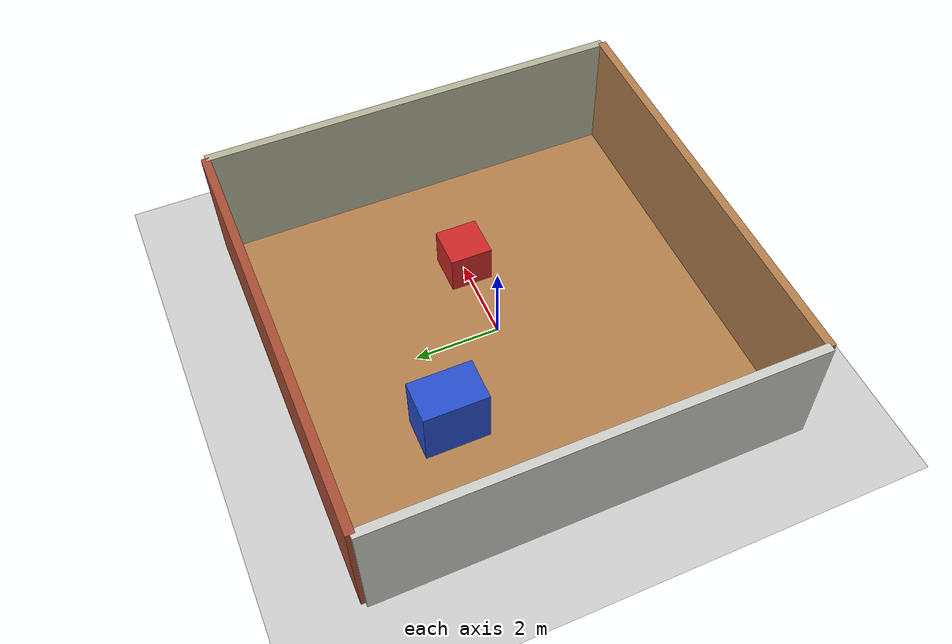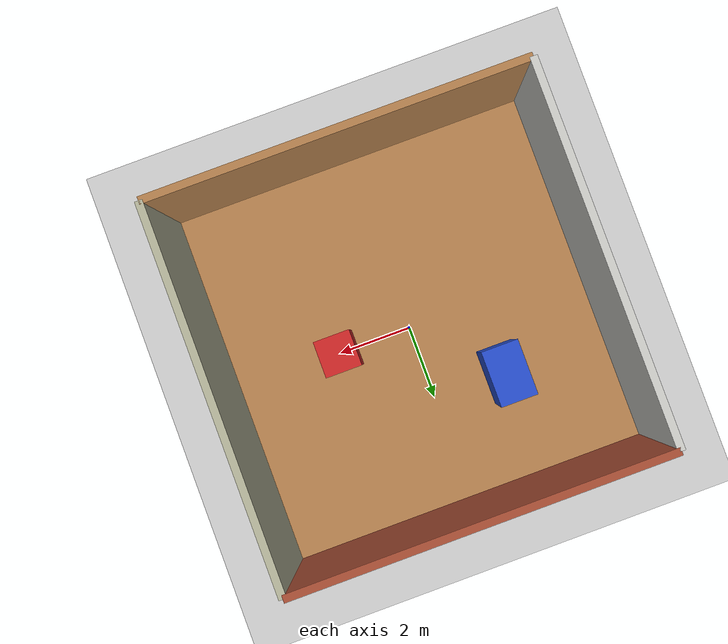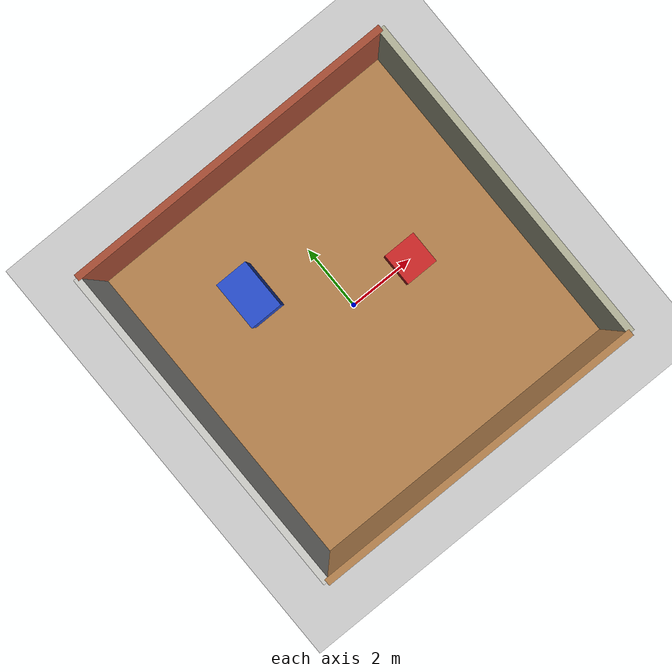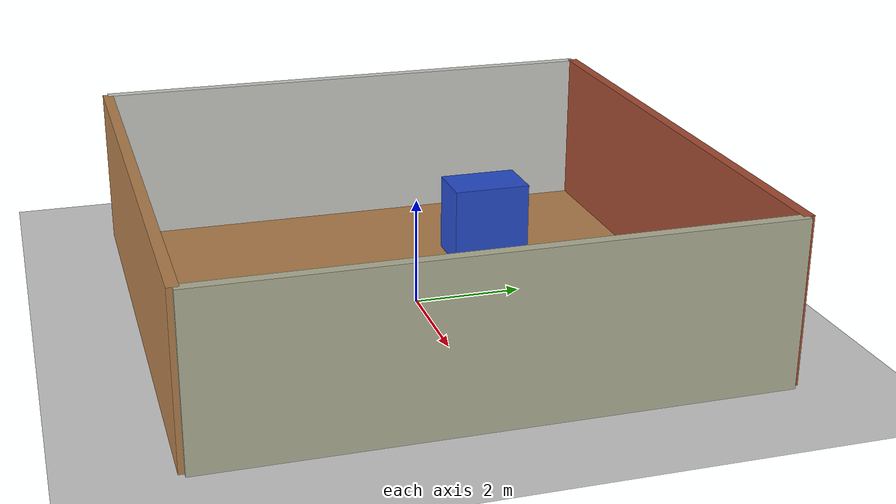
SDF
<?xml version="1.0" ?>
<sdf version="1.6">
  <world name="simple_room">

    <include>
      <uri>model://sun</uri>
    </include>

    <include>
      <uri>model://ground_plane</uri>
    </include>

    <!-- On duvar - tuğla texture -->
    <model name="wall_front">
      <static>true</static>
      <pose>0 5 1.5 0 0 0</pose>
      <link name="link">
        <collision name="collision">
          <geometry><box><size>10 0.2 3</size></box></geometry>
        </collision>
        <visual name="visual">
          <geometry><box><size>10 0.2 3</size></box></geometry>
          <material>
            <script>
              <uri>file://media/materials/scripts/gazebo.material</uri>
              <name>Gazebo/Bricks</name>
            </script>
          </material>
        </visual>
      </link>
    </model>

    <!-- Arka duvar - ahsap texture -->
    <model name="wall_back">
      <static>true</static>
      <pose>0 -5 1.5 0 0 0</pose>
      <link name="link">
        <collision name="collision">
          <geometry><box><size>10 0.2 3</size></box></geometry>
        </collision>
        <visual name="visual">
          <geometry><box><size>10 0.2 3</size></box></geometry>
          <material>
            <script>
              <uri>file://media/materials/scripts/gazebo.material</uri>
              <name>Gazebo/Wood</name>
            </script>
          </material>
        </visual>
      </link>
    </model>

    <!-- Sol duvar - tas texture -->
    <model name="wall_left">
      <static>true</static>
      <pose>-5 0 1.5 0 0 1.5708</pose>
      <link name="link">
        <collision name="collision">
          <geometry><box><size>10 0.2 3</size></box></geometry>
        </collision>
        <visual name="visual">
          <geometry><box><size>10 0.2 3</size></box></geometry>
          <material>
            <script>
              <uri>file://media/materials/scripts/gazebo.material</uri>
              <name>Gazebo/CeilingTiled</name>
            </script>
          </material>
        </visual>
      </link>
    </model>

    <!-- Sag duvar - beton texture -->
    <model name="wall_right">
      <static>true</static>
      <pose>5 0 1.5 0 0 1.5708</pose>
      <link name="link">
        <collision name="collision">
          <geometry><box><size>10 0.2 3</size></box></geometry>
        </collision>
        <visual name="visual">
          <geometry><box><size>10 0.2 3</size></box></geometry>
          <material>
            <script>
              <uri>file://media/materials/scripts/gazebo.material</uri>
              <name>Gazebo/Residential</name>
            </script>
          </material>
        </visual>
      </link>
    </model>

    <!-- Zemin - farkli texture -->
    <model name="textured_floor">
      <static>true</static>
      <pose>0 0 0.001 0 0 0</pose>
      <link name="link">
        <collision name="collision">
          <geometry><box><size>10 10 0.001</size></box></geometry>
        </collision>
        <visual name="visual">
          <geometry><box><size>10 10 0.001</size></box></geometry>
          <material>
            <script>
              <uri>file://media/materials/scripts/gazebo.material</uri>
              <name>Gazebo/WoodFloor</name>
            </script>
          </material>
        </visual>
      </link>
    </model>

    <!-- Kirmizi kutu -->
    <model name="box1">
      <static>true</static>
      <pose>2 0 0.5 0 0 0</pose>
      <link name="link">
        <collision name="collision">
          <geometry><box><size>1 1 1</size></box></geometry>
        </collision>
        <visual name="visual">
          <geometry><box><size>1 1 1</size></box></geometry>
          <material>
            <script>
              <uri>file://media/materials/scripts/gazebo.material</uri>
              <name>Gazebo/Red</name>
            </script>
          </material>
        </visual>
      </link>
    </model>

    <!-- Mavi kutu -->
    <model name="box2">
      <static>true</static>
      <pose>-2 2 0.75 0 0 0</pose>
      <link name="link">
        <collision name="collision">
          <geometry><box><size>1 1.5 1.5</size></box></geometry>
        </collision>
        <visual name="visual">
          <geometry><box><size>1 1.5 1.5</size></box></geometry>
          <material>
            <script>
              <uri>file://media/materials/scripts/gazebo.material</uri>
              <name>Gazebo/Blue</name>
            </script>
          </material>
        </visual>
      </link>
    </model>

  </world>
</sdf>
